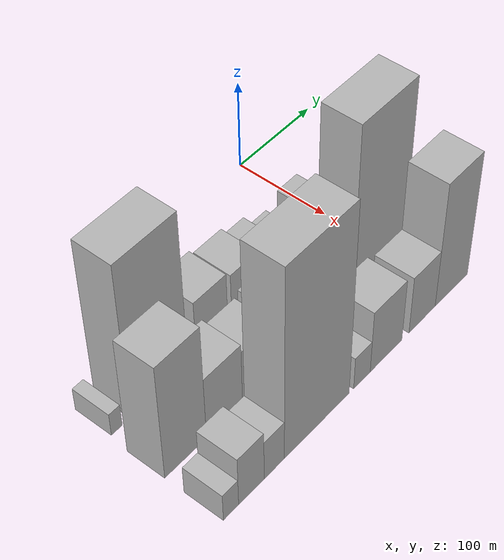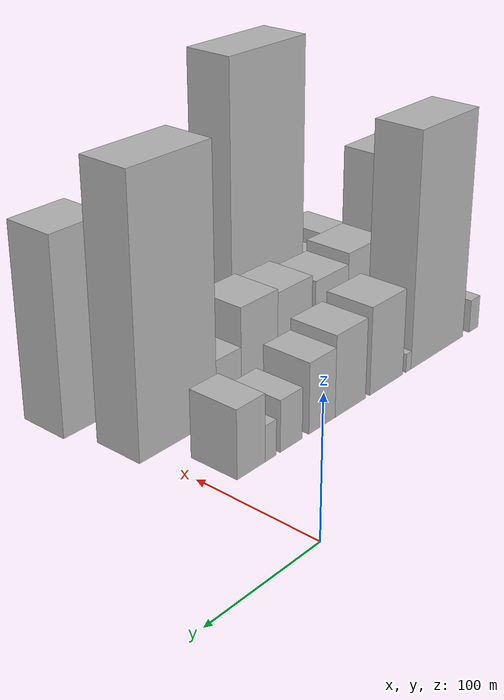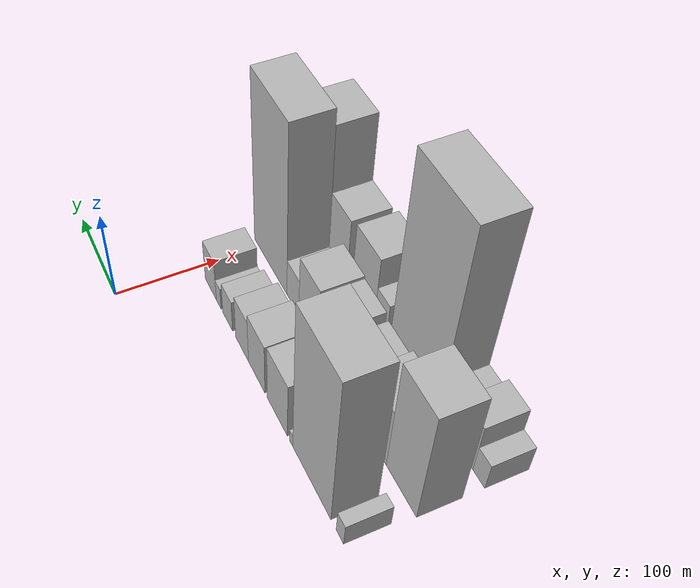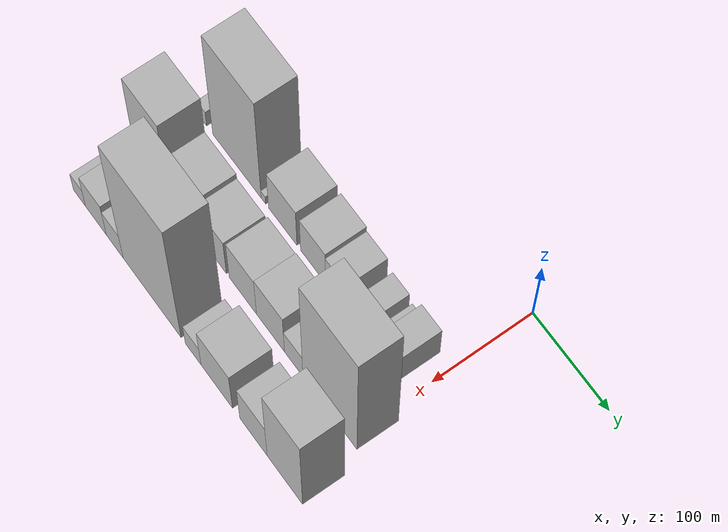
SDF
<sdf version="1.6">
 <world name="default">
  <model name="building_10">
   <static>1</static>
   <pose>100.0000 -291.6246 0 0.000000 0.000000 0.000000</pose>
   <link name="link">
    <pose>0 0 13.50 0 0 0</pose>
    <collision name="collision"><geometry><box><size>40.0000 12.6088 27.0000</size></box></geometry></collision>
    <visual name="visual">
     <cast_shadows>0</cast_shadows>
     <geometry><box><size>40.0000 12.6088 27.0000</size></box></geometry>
     <material>
      <script>
       <uri>model://HANNAS_wall/materials/scripts</uri>
       <uri>model://HANNAS_wall/materials/textures</uri>
       <name>vrc/HANNAS_wall</name>
      </script>
     </material>
    </visual>
   </link>
  </model>
  <model name="building_11">
   <static>1</static>
   <pose>100.0000 -241.5923 0 0.000000 0.000000 0.000000</pose>
   <link name="link">
    <pose>0 0 91.50 0 0 0</pose>
    <collision name="collision"><geometry><box><size>40.0000 69.4558 183.0000</size></box></geometry></collision>
    <visual name="visual">
     <cast_shadows>0</cast_shadows>
     <geometry><box><size>40.0000 69.4558 183.0000</size></box></geometry>
     <material>
      <script>
       <uri>model://HANNAS_wall/materials/scripts</uri>
       <uri>model://HANNAS_wall/materials/textures</uri>
       <name>vrc/HANNAS_wall</name>
      </script>
     </material>
    </visual>
   </link>
  </model>
  <model name="building_12">
   <static>1</static>
   <pose>100.0000 -203.6578 0 0.000000 0.000000 0.000000</pose>
   <link name="link">
    <pose>0 0 7.50 0 0 0</pose>
    <collision name="collision"><geometry><box><size>40.0000 6.4133 15.0000</size></box></geometry></collision>
    <visual name="visual">
     <cast_shadows>0</cast_shadows>
     <geometry><box><size>40.0000 6.4133 15.0000</size></box></geometry>
     <material>
      <script>
       <uri>model://HANNAS_wall/materials/scripts</uri>
       <uri>model://HANNAS_wall/materials/textures</uri>
       <name>vrc/HANNAS_wall</name>
      </script>
     </material>
    </visual>
   </link>
  </model>
  <model name="building_13">
   <static>1</static>
   <pose>100.0000 -176.4367 0 0.000000 0.000000 0.000000</pose>
   <link name="link">
    <pose>0 0 34.50 0 0 0</pose>
    <collision name="collision"><geometry><box><size>40.0000 40.0288 69.0000</size></box></geometry></collision>
    <visual name="visual">
     <cast_shadows>0</cast_shadows>
     <geometry><box><size>40.0000 40.0288 69.0000</size></box></geometry>
     <material>
      <script>
       <uri>model://HANNAS_wall/materials/scripts</uri>
       <uri>model://HANNAS_wall/materials/textures</uri>
       <name>vrc/HANNAS_wall</name>
      </script>
     </material>
    </visual>
   </link>
  </model>
  <model name="building_14">
   <static>1</static>
   <pose>100.0000 -134.0213 0 0.000000 0.000000 0.000000</pose>
   <link name="link">
    <pose>0 0 31.50 0 0 0</pose>
    <collision name="collision"><geometry><box><size>40.0000 34.8020 63.0000</size></box></geometry></collision>
    <visual name="visual">
     <cast_shadows>0</cast_shadows>
     <geometry><box><size>40.0000 34.8020 63.0000</size></box></geometry>
     <material>
      <script>
       <uri>model://HANNAS_wall/materials/scripts</uri>
       <uri>model://HANNAS_wall/materials/textures</uri>
       <name>vrc/HANNAS_wall</name>
      </script>
     </material>
    </visual>
   </link>
  </model>
  <model name="building_15">
   <static>1</static>
   <pose>100.0000 -102.4216 0 0.000000 0.000000 0.000000</pose>
   <link name="link">
    <pose>0 0 27.00 0 0 0</pose>
    <collision name="collision"><geometry><box><size>40.0000 28.3974 54.0000</size></box></geometry></collision>
    <visual name="visual">
     <cast_shadows>0</cast_shadows>
     <geometry><box><size>40.0000 28.3974 54.0000</size></box></geometry>
     <material>
      <script>
       <uri>model://HANNAS_wall/materials/scripts</uri>
       <uri>model://HANNAS_wall/materials/textures</uri>
       <name>vrc/HANNAS_wall</name>
      </script>
     </material>
    </visual>
   </link>
  </model>
  <model name="building_16">
   <static>1</static>
   <pose>100.0000 -69.9019 0 0.000000 0.000000 0.000000</pose>
   <link name="link">
    <pose>0 0 19.50 0 0 0</pose>
    <collision name="collision"><geometry><box><size>40.0000 22.6419 39.0000</size></box></geometry></collision>
    <visual name="visual">
     <cast_shadows>0</cast_shadows>
     <geometry><box><size>40.0000 22.6419 39.0000</size></box></geometry>
     <material>
      <script>
       <uri>model://HANNAS_wall/materials/scripts</uri>
       <uri>model://HANNAS_wall/materials/textures</uri>
       <name>vrc/HANNAS_wall</name>
      </script>
     </material>
    </visual>
   </link>
  </model>
  <model name="building_17">
   <static>1</static>
   <pose>100.0000 -48.9217 0 0.000000 0.000000 0.000000</pose>
   <link name="link">
    <pose>0 0 13.50 0 0 0</pose>
    <collision name="collision"><geometry><box><size>40.0000 11.3185 27.0000</size></box></geometry></collision>
    <visual name="visual">
     <cast_shadows>0</cast_shadows>
     <geometry><box><size>40.0000 11.3185 27.0000</size></box></geometry>
     <material>
      <script>
       <uri>model://HANNAS_wall/materials/scripts</uri>
       <uri>model://HANNAS_wall/materials/textures</uri>
       <name>vrc/HANNAS_wall</name>
      </script>
     </material>
    </visual>
   </link>
  </model>
  <model name="building_18">
   <static>1</static>
   <pose>100.0000 -29.7949 0 0.000000 0.000000 0.000000</pose>
   <link name="link">
    <pose>0 0 25.50 0 0 0</pose>
    <collision name="collision"><geometry><box><size>40.0000 26.9351 51.0000</size></box></geometry></collision>
    <visual name="visual">
     <cast_shadows>0</cast_shadows>
     <geometry><box><size>40.0000 26.9351 51.0000</size></box></geometry>
     <material>
      <script>
       <uri>model://HANNAS_wall/materials/scripts</uri>
       <uri>model://HANNAS_wall/materials/textures</uri>
       <name>vrc/HANNAS_wall</name>
      </script>
     </material>
    </visual>
   </link>
  </model>
  <model name="building_40">
   <static>1</static>
   <pose>160.0000 -276.5507 0 0.000000 0.000000 0.000000</pose>
   <link name="link">
    <pose>0 0 69.00 0 0 0</pose>
    <collision name="collision"><geometry><box><size>40.0000 48.9693 138.0000</size></box></geometry></collision>
    <visual name="visual">
     <cast_shadows>0</cast_shadows>
     <geometry><box><size>40.0000 48.9693 138.0000</size></box></geometry>
     <material>
      <script>
       <uri>model://HANNAS_wall/materials/scripts</uri>
       <uri>model://HANNAS_wall/materials/textures</uri>
       <name>vrc/HANNAS_wall</name>
      </script>
     </material>
    </visual>
   </link>
  </model>
  <model name="building_41">
   <static>1</static>
   <pose>160.0000 -230.0866 0 0.000000 0.000000 0.000000</pose>
   <link name="link">
    <pose>0 0 37.50 0 0 0</pose>
    <collision name="collision"><geometry><box><size>40.0000 43.9590 75.0000</size></box></geometry></collision>
    <visual name="visual">
     <cast_shadows>0</cast_shadows>
     <geometry><box><size>40.0000 43.9590 75.0000</size></box></geometry>
     <material>
      <script>
       <uri>model://HANNAS_wall/materials/scripts</uri>
       <uri>model://HANNAS_wall/materials/textures</uri>
       <name>vrc/HANNAS_wall</name>
      </script>
     </material>
    </visual>
   </link>
  </model>
  <model name="building_42">
   <static>1</static>
   <pose>160.0000 -188.6603 0 0.000000 0.000000 0.000000</pose>
   <link name="link">
    <pose>0 0 33.00 0 0 0</pose>
    <collision name="collision"><geometry><box><size>40.0000 38.8935 66.0000</size></box></geometry></collision>
    <visual name="visual">
     <cast_shadows>0</cast_shadows>
     <geometry><box><size>40.0000 38.8935 66.0000</size></box></geometry>
     <material>
      <script>
       <uri>model://HANNAS_wall/materials/scripts</uri>
       <uri>model://HANNAS_wall/materials/textures</uri>
       <name>vrc/HANNAS_wall</name>
      </script>
     </material>
    </visual>
   </link>
  </model>
  <model name="building_43">
   <static>1</static>
   <pose>160.0000 -146.0677 0 0.000000 0.000000 0.000000</pose>
   <link name="link">
    <pose>0 0 36.00 0 0 0</pose>
    <collision name="collision"><geometry><box><size>40.0000 38.2918 72.0000</size></box></geometry></collision>
    <visual name="visual">
     <cast_shadows>0</cast_shadows>
     <geometry><box><size>40.0000 38.2918 72.0000</size></box></geometry>
     <material>
      <script>
       <uri>model://HANNAS_wall/materials/scripts</uri>
       <uri>model://HANNAS_wall/materials/textures</uri>
       <name>vrc/HANNAS_wall</name>
      </script>
     </material>
    </visual>
   </link>
  </model>
  <model name="building_44">
   <static>1</static>
   <pose>160.0000 -107.5160 0 0.000000 0.000000 0.000000</pose>
   <link name="link">
    <pose>0 0 37.50 0 0 0</pose>
    <collision name="collision"><geometry><box><size>40.0000 38.8116 75.0000</size></box></geometry></collision>
    <visual name="visual">
     <cast_shadows>0</cast_shadows>
     <geometry><box><size>40.0000 38.8116 75.0000</size></box></geometry>
     <material>
      <script>
       <uri>model://HANNAS_wall/materials/scripts</uri>
       <uri>model://HANNAS_wall/materials/textures</uri>
       <name>vrc/HANNAS_wall</name>
      </script>
     </material>
    </visual>
   </link>
  </model>
  <model name="building_45">
   <static>1</static>
   <pose>160.0000 -75.4358 0 0.000000 0.000000 0.000000</pose>
   <link name="link">
    <pose>0 0 22.50 0 0 0</pose>
    <collision name="collision"><geometry><box><size>40.0000 25.3489 45.0000</size></box></geometry></collision>
    <visual name="visual">
     <cast_shadows>0</cast_shadows>
     <geometry><box><size>40.0000 25.3489 45.0000</size></box></geometry>
     <material>
      <script>
       <uri>model://HANNAS_wall/materials/scripts</uri>
       <uri>model://HANNAS_wall/materials/textures</uri>
       <name>vrc/HANNAS_wall</name>
      </script>
     </material>
    </visual>
   </link>
  </model>
  <model name="building_46">
   <static>1</static>
   <pose>160.0000 -26.0737 0 0.000000 0.000000 0.000000</pose>
   <link name="link">
    <pose>0 0 100.50 0 0 0</pose>
    <collision name="collision"><geometry><box><size>40.0000 73.3753 201.0000</size></box></geometry></collision>
    <visual name="visual">
     <cast_shadows>0</cast_shadows>
     <geometry><box><size>40.0000 73.3753 201.0000</size></box></geometry>
     <material>
      <script>
       <uri>model://HANNAS_wall/materials/scripts</uri>
       <uri>model://HANNAS_wall/materials/textures</uri>
       <name>vrc/HANNAS_wall</name>
      </script>
     </material>
    </visual>
   </link>
  </model>
  <model name="building_69">
   <static>1</static>
   <pose>220.0000 -292.0616 0 0.000000 0.000000 0.000000</pose>
   <link name="link">
    <pose>0 0 16.50 0 0 0</pose>
    <collision name="collision"><geometry><box><size>40.0000 17.7966 33.0000</size></box></geometry></collision>
    <visual name="visual">
     <cast_shadows>0</cast_shadows>
     <geometry><box><size>40.0000 17.7966 33.0000</size></box></geometry>
     <material>
      <script>
       <uri>model://HANNAS_wall/materials/scripts</uri>
       <uri>model://HANNAS_wall/materials/textures</uri>
       <name>vrc/HANNAS_wall</name>
      </script>
     </material>
    </visual>
   </link>
  </model>
  <model name="building_70">
   <static>1</static>
   <pose>220.0000 -267.9051 0 0.000000 0.000000 0.000000</pose>
   <link name="link">
    <pose>0 0 30.00 0 0 0</pose>
    <collision name="collision"><geometry><box><size>40.0000 30.5165 60.0000</size></box></geometry></collision>
    <visual name="visual">
     <cast_shadows>0</cast_shadows>
     <geometry><box><size>40.0000 30.5165 60.0000</size></box></geometry>
     <material>
      <script>
       <uri>model://HANNAS_wall/materials/scripts</uri>
       <uri>model://HANNAS_wall/materials/textures</uri>
       <name>vrc/HANNAS_wall</name>
      </script>
     </material>
    </visual>
   </link>
  </model>
  <model name="building_71">
   <static>1</static>
   <pose>220.0000 -240.4118 0 0.000000 0.000000 0.000000</pose>
   <link name="link">
    <pose>0 0 24.00 0 0 0</pose>
    <collision name="collision"><geometry><box><size>40.0000 24.4700 48.0000</size></box></geometry></collision>
    <visual name="visual">
     <cast_shadows>0</cast_shadows>
     <geometry><box><size>40.0000 24.4700 48.0000</size></box></geometry>
     <material>
      <script>
       <uri>model://HANNAS_wall/materials/scripts</uri>
       <uri>model://HANNAS_wall/materials/textures</uri>
       <name>vrc/HANNAS_wall</name>
      </script>
     </material>
    </visual>
   </link>
  </model>
  <model name="building_72">
   <static>1</static>
   <pose>220.0000 -186.7608 0 0.000000 0.000000 0.000000</pose>
   <link name="link">
    <pose>0 0 112.50 0 0 0</pose>
    <collision name="collision"><geometry><box><size>40.0000 82.8322 225.0000</size></box></geometry></collision>
    <visual name="visual">
     <cast_shadows>0</cast_shadows>
     <geometry><box><size>40.0000 82.8322 225.0000</size></box></geometry>
     <material>
      <script>
       <uri>model://HANNAS_wall/materials/scripts</uri>
       <uri>model://HANNAS_wall/materials/textures</uri>
       <name>vrc/HANNAS_wall</name>
      </script>
     </material>
    </visual>
   </link>
  </model>
  <model name="building_73">
   <static>1</static>
   <pose>220.0000 -128.2399 0 0.000000 0.000000 0.000000</pose>
   <link name="link">
    <pose>0 0 19.50 0 0 0</pose>
    <collision name="collision"><geometry><box><size>40.0000 22.2095 39.0000</size></box></geometry></collision>
    <visual name="visual">
     <cast_shadows>0</cast_shadows>
     <geometry><box><size>40.0000 22.2095 39.0000</size></box></geometry>
     <material>
      <script>
       <uri>model://HANNAS_wall/materials/scripts</uri>
       <uri>model://HANNAS_wall/materials/textures</uri>
       <name>vrc/HANNAS_wall</name>
      </script>
     </material>
    </visual>
   </link>
  </model>
  <model name="building_74">
   <static>1</static>
   <pose>220.0000 -95.2486 0 0.000000 0.000000 0.000000</pose>
   <link name="link">
    <pose>0 0 37.50 0 0 0</pose>
    <collision name="collision"><geometry><box><size>40.0000 43.7731 75.0000</size></box></geometry></collision>
    <visual name="visual">
     <cast_shadows>0</cast_shadows>
     <geometry><box><size>40.0000 43.7731 75.0000</size></box></geometry>
     <material>
      <script>
       <uri>model://HANNAS_wall/materials/scripts</uri>
       <uri>model://HANNAS_wall/materials/textures</uri>
       <name>vrc/HANNAS_wall</name>
      </script>
     </material>
    </visual>
   </link>
  </model>
  <model name="building_75">
   <static>1</static>
   <pose>220.0000 -44.5372 0 0.000000 0.000000 0.000000</pose>
   <link name="link">
    <pose>0 0 34.50 0 0 0</pose>
    <collision name="collision"><geometry><box><size>40.0000 37.6497 69.0000</size></box></geometry></collision>
    <visual name="visual">
     <cast_shadows>0</cast_shadows>
     <geometry><box><size>40.0000 37.6497 69.0000</size></box></geometry>
     <material>
      <script>
       <uri>model://HANNAS_wall/materials/scripts</uri>
       <uri>model://HANNAS_wall/materials/textures</uri>
       <name>vrc/HANNAS_wall</name>
      </script>
     </material>
    </visual>
   </link>
  </model>
  <model name="building_76">
   <static>1</static>
   <pose>220.0000 -1.7363 0 0.000000 0.000000 0.000000</pose>
   <link name="link">
    <pose>0 0 73.50 0 0 0</pose>
    <collision name="collision"><geometry><box><size>40.0000 47.9522 147.0000</size></box></geometry></collision>
    <visual name="visual">
     <cast_shadows>0</cast_shadows>
     <geometry><box><size>40.0000 47.9522 147.0000</size></box></geometry>
     <material>
      <script>
       <uri>model://HANNAS_wall/materials/scripts</uri>
       <uri>model://HANNAS_wall/materials/textures</uri>
       <name>vrc/HANNAS_wall</name>
      </script>
     </material>
    </visual>
   </link>
  </model>
 </world>
</sdf>
